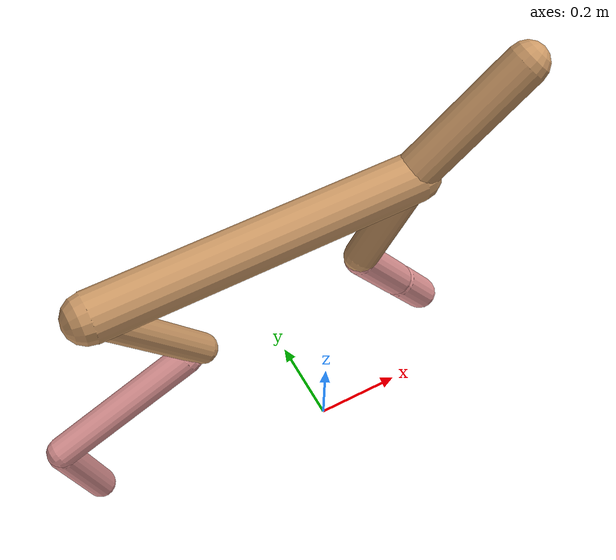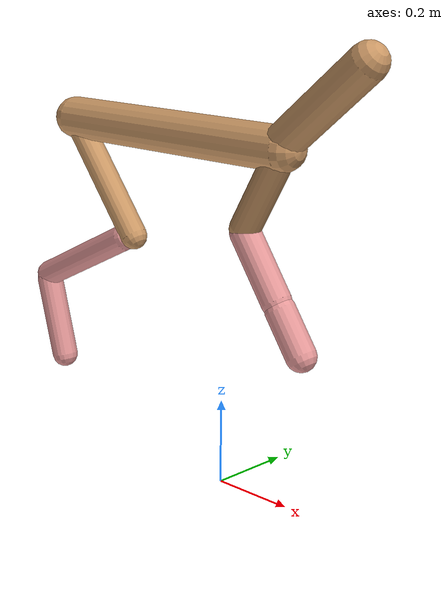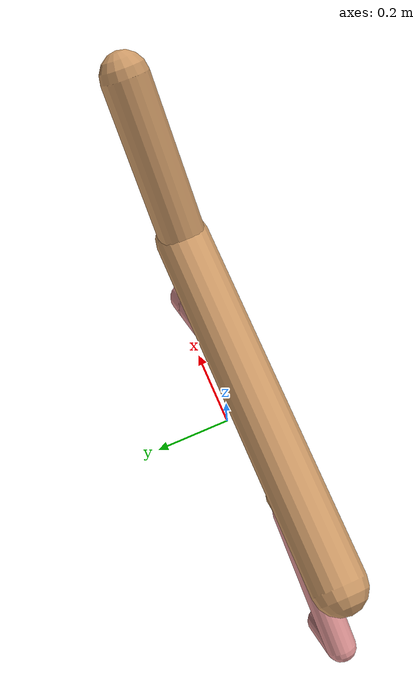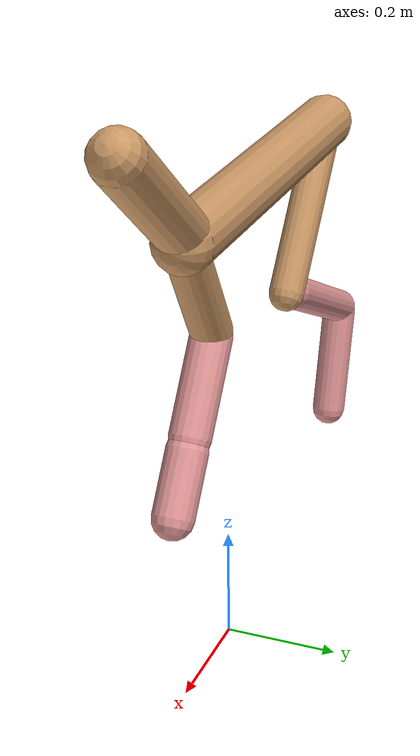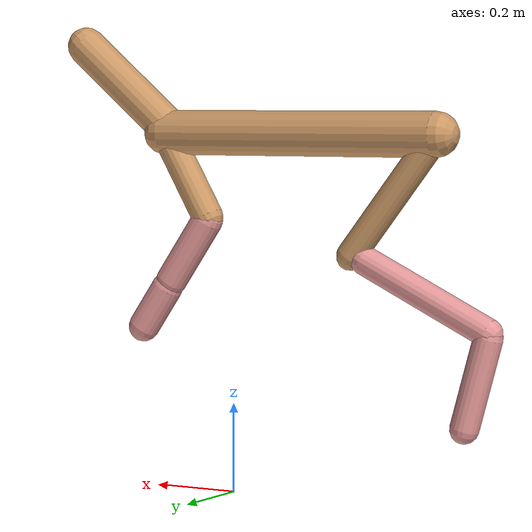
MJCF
<mujoco model="cheetah">
  <compiler angle="radian" coordinate="local" inertiafromgeom="true" settotalmass="14" />
  <default>
    <joint armature=".1" damping=".01" limited="true" solimplimit="0 .8 .03" solreflimit=".02 1" stiffness="8" />
    <geom conaffinity="0" condim="3" contype="1" friction="0.8 .1 .1" rgba="0.8 0.6 .4 1" solimp="0.0 0.8 0.01" solref="0.02 1" />
    <motor ctrllimited="true" ctrlrange="-1 1" />
  </default>
  <size nstack="300000" nuser_geom="1" />
  <option gravity="0 0 -9.81" timestep="0.01" />
  <worldbody>
    <body name="torso" pos="0.0 0.0 0.8068801244024851">
      <joint armature="0" axis="1 0 0" damping="0" limited="false" name="ignorex" pos="0 0 0" stiffness="0" type="slide" />
      <joint armature="0" axis="0 0 1" damping="0" limited="false" name="ignorez" pos="0 0 0" stiffness="0" type="slide" />
      <joint armature="0" axis="0 1 0" damping="0" limited="false" name="ignorey" pos="0 0 0" stiffness="0" type="hinge" />
      <geom fromto="-0.5 0.0 0.0 0.17594957095271263 0.0 0.0" name="torso" size="0.05024360676152627" type="capsule" />
      <geom axisangle="0 1 0 .87" name="head" pos="0.27594957095271255 0.0 0.1" size="0.043441087453359464 0.15" type="capsule" />

      <body name="bthigh" pos="-.5 0 0">
        <joint axis="0 1 0" damping="6" name="bthigh" pos="0 0 0" range="-.52 1.05" stiffness="240" type="hinge" />
        <geom axisangle="0 1 0 -3.8" name="bthigh" pos="0.10800768176739543 0.0 -0.14040998629761406" size="0.0322 0.15813357460877994" type="capsule" />
        <body name="bshin" pos="0.17601536353479086 0.0 -0.2708199725952281">
          <joint axis="0 1 0" damping="4.5" name="bshin" pos="0 0 0" range="-.785 .785" stiffness="180" type="hinge" />
          <geom axisangle="0 1 0 -2.03" name="bshin" pos="-0.15215209611564023 0.0 -0.07607604805782012" rgba="0.9 0.6 0.6 1" size="0.0322 0.16358645649184134" type="capsule" />
          <body name="bfoot" pos="-0.30430419223128047 0.0 -0.15215209611564023">
            <joint axis="0 1 0" damping="3" name="bfoot" pos="0 0 0" range="-.4 .785" stiffness="120" type="hinge" />
            <geom axisangle="0 1 0 -.27" name="bfoot" pos="0.03251568222868591 0.0 -0.10513403920608444" rgba="0.9 0.6 0.6 1" size="0.0322 0.1025141794015539" type="capsule" />
            <inertial mass="10" />
          </body>
        </body>
      </body>
      <body name="fthigh" pos="0.17594957095271258 0.0 0.0">
        <joint axis="0 1 0" damping="4.5" name="fthigh" pos="0 0 0" range="-1.5 0.8" stiffness="180" type="hinge" />
        <geom axisangle="0 1 0 .52" name="fthigh" pos="-0.05644938299304069 0.0 -0.0967703708452126" size="0.03539442959667109 0.10610697317261884" type="capsule" />
        <body name="fshin" pos="-0.11289876598608138 0.0 -0.1935407416904252">
          <joint axis="0 1 0" damping="3" name="fshin" pos="0 0 0" range="-1.2 1.1" stiffness="120" type="hinge" />
          <geom axisangle="0 1 0 -.6" name="fshin" pos="0.05245086469021243 0.0 -0.07262427418644797" rgba="0.9 0.6 0.6 1" size="0.03539442959667109 0.08456645982178644" type="capsule" />
          <body name="ffoot" pos="0.10490172938042486 0.0 -0.14524854837289594">
            <joint axis="0 1 0" damping="1.5" name="ffoot" pos="0 0 0" range="-3.1 -0.3" stiffness="60" type="hinge" />
            <geom axisangle="0 1 0 -.6" name="ffoot" pos="0.037345995573524235 0.0 -0.05809377089214882" rgba="0.9 0.6 0.6 1" size="0.03539442959667109 0.05584577535400992" type="capsule" />
            <inertial mass="10" />
          </body>
        </body>
      </body>
    </body>
  </worldbody>
  <actuator>
    <motor gear="120" joint="bthigh" name="bthigh" />
    <motor gear="90" joint="bshin" name="bshin" />
    <motor gear="60" joint="bfoot" name="bfoot" />
    <motor gear="120" joint="fthigh" name="fthigh" />
    <motor gear="60" joint="fshin" name="fshin" />
    <motor gear="30" joint="ffoot" name="ffoot" />
  </actuator>
</mujoco>
